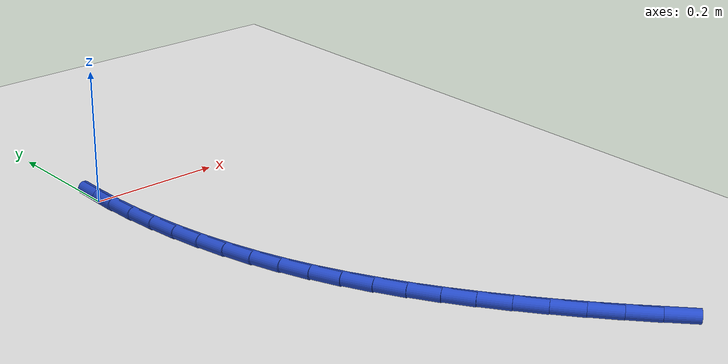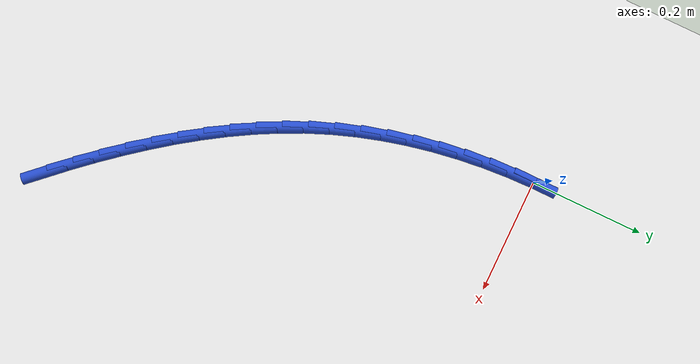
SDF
<sdf version="1.6">
 <world name="default">
  <model name="ground_plane">
   <static>1</static>
   <link name="link">
    <collision name="collision">
     <geometry><plane><normal>0 0 1</normal><size>100 100</size></plane></geometry>
     <surface><friction><ode><mu>100</mu><mu2>50</mu2></ode></friction></surface>
    </collision>
    <visual name="visual">
     <cast_shadows>0</cast_shadows>
     <geometry><plane><normal>0 0 1</normal><size>100 100</size></plane></geometry>
     <material>
      <script><uri>file://media/materials/scripts/gazebo.material</uri><name>Gazebo/WhiteGlow</name></script>
     </material>
    </visual>
   </link>
  </model>
  <model name="line">
   <link name="link_0">
    <pose>4.0766001685454967e-17 -5.551115123125783e-17 0.01 0 1.57 1.5599970781237409</pose>
    <collision name="collision">
     <geometry><cylinder><radius>0.01</radius><length>0.08</length></cylinder></geometry>
    </collision>
    <visual name="visual">
     <material>
      <script><name>Gazebo/Blue</name><uri>file://media/materials/scripts/gazebo.material</uri></script>
     </material>
     <geometry><cylinder><radius>0.01</radius><length>0.08</length></cylinder></geometry>
    </visual>
   </link>
   <link name="link_151">
    <pose>0.33772573807222744 -0.76064062080208 0.01 0 1.57 -0.8281751361616733</pose>
    <collision name="collision">
     <geometry><cylinder><radius>0.01</radius><length>0.08</length></cylinder></geometry>
    </collision>
    <visual name="visual">
     <material>
      <script><name>Gazebo/Blue</name><uri>file://media/materials/scripts/gazebo.material</uri></script>
     </material>
     <geometry><cylinder><radius>0.01</radius><length>0.08</length></cylinder></geometry>
    </visual>
   </link>
   <link name="link_152">
    <pose>0.30627559313724306 -0.7263777564111568 0.01 0 1.57 -0.8544680946568134</pose>
    <collision name="collision">
     <geometry><cylinder><radius>0.01</radius><length>0.08</length></cylinder></geometry>
    </collision>
    <visual name="visual">
     <material>
      <script><name>Gazebo/Blue</name><uri>file://media/materials/scripts/gazebo.material</uri></script>
     </material>
     <geometry><cylinder><radius>0.01</radius><length>0.08</length></cylinder></geometry>
    </visual>
   </link>
   <link name="link_153">
    <pose>0.27583845358301473 -0.6914163466865687 0.01 0 1.57 -0.879572883494342</pose>
    <collision name="collision">
     <geometry><cylinder><radius>0.01</radius><length>0.08</length></cylinder></geometry>
    </collision>
    <visual name="visual">
     <material>
      <script><name>Gazebo/Blue</name><uri>file://media/materials/scripts/gazebo.material</uri></script>
     </material>
     <geometry><cylinder><radius>0.01</radius><length>0.08</length></cylinder></geometry>
    </visual>
   </link>
   <link name="link_154">
    <pose>0.24648865440039927 -0.6559438109441835 0.01 0 1.57 -0.9057194336440809</pose>
    <collision name="collision">
     <geometry><cylinder><radius>0.01</radius><length>0.08</length></cylinder></geometry>
    </collision>
    <visual name="visual">
     <material>
      <script><name>Gazebo/Blue</name><uri>file://media/materials/scripts/gazebo.material</uri></script>
     </material>
     <geometry><cylinder><radius>0.01</radius><length>0.08</length></cylinder></geometry>
    </visual>
   </link>
   <link name="link_155">
    <pose>0.2183187937275196 -0.6200253307596406 0.01 0 1.57 -0.9350248473452728</pose>
    <collision name="collision">
     <geometry><cylinder><radius>0.01</radius><length>0.08</length></cylinder></geometry>
    </collision>
    <visual name="visual">
     <material>
      <script><name>Gazebo/Blue</name><uri>file://media/materials/scripts/gazebo.material</uri></script>
     </material>
     <geometry><cylinder><radius>0.01</radius><length>0.08</length></cylinder></geometry>
    </visual>
   </link>
   <link name="link_156">
    <pose>0.19143978431093248 -0.5836035055317471 0.01 0 1.57 -0.9676421496904232</pose>
    <collision name="collision">
     <geometry><cylinder><radius>0.01</radius><length>0.08</length></cylinder></geometry>
    </collision>
    <visual name="visual">
     <material>
      <script><name>Gazebo/Blue</name><uri>file://media/materials/scripts/gazebo.material</uri></script>
     </material>
     <geometry><cylinder><radius>0.01</radius><length>0.08</length></cylinder></geometry>
    </visual>
   </link>
   <link name="link_157">
    <pose>0.16596333922351006 -0.5466155779659205 0.01 0 1.57 -1.0036091126268816</pose>
    <collision name="collision">
     <geometry><cylinder><radius>0.01</radius><length>0.08</length></cylinder></geometry>
    </collision>
    <visual name="visual">
     <material>
      <script><name>Gazebo/Blue</name><uri>file://media/materials/scripts/gazebo.material</uri></script>
     </material>
     <geometry><cylinder><radius>0.01</radius><length>0.08</length></cylinder></geometry>
    </visual>
   </link>
   <link name="link_158">
    <pose>0.14200117153812408 -0.5089987907675771 0.01 0 1.57 -1.0429242994752204</pose>
    <collision name="collision">
     <geometry><cylinder><radius>0.01</radius><length>0.08</length></cylinder></geometry>
    </collision>
    <visual name="visual">
     <material>
      <script><name>Gazebo/Blue</name><uri>file://media/materials/scripts/gazebo.material</uri></script>
     </material>
     <geometry><cylinder><radius>0.01</radius><length>0.08</length></cylinder></geometry>
    </visual>
   </link>
   <link name="link_159">
    <pose>0.1196649943276476 -0.4706903866421355 0.01 0 1.57 -1.085534561452969</pose>
    <collision name="collision">
     <geometry><cylinder><radius>0.01</radius><length>0.08</length></cylinder></geometry>
    </collision>
    <visual name="visual">
     <material>
      <script><name>Gazebo/Blue</name><uri>file://media/materials/scripts/gazebo.material</uri></script>
     </material>
     <geometry><cylinder><radius>0.01</radius><length>0.08</length></cylinder></geometry>
    </visual>
   </link>
   <link name="link_160">
    <pose>0.09906652066495235 -0.43162760829501196 0.01 0 1.57 -1.1313224967273006</pose>
    <collision name="collision">
     <geometry><cylinder><radius>0.01</radius><length>0.08</length></cylinder></geometry>
    </collision>
    <visual name="visual">
     <material>
      <script><name>Gazebo/Blue</name><uri>file://media/materials/scripts/gazebo.material</uri></script>
     </material>
     <geometry><cylinder><radius>0.01</radius><length>0.08</length></cylinder></geometry>
    </visual>
   </link>
   <link name="link_161">
    <pose>0.08031746362291053 -0.3917476984316239 0.01 0 1.57 -1.1800842002863394</pose>
    <collision name="collision">
     <geometry><cylinder><radius>0.01</radius><length>0.08</length></cylinder></geometry>
    </collision>
    <visual name="visual">
     <material>
      <script><name>Gazebo/Blue</name><uri>file://media/materials/scripts/gazebo.material</uri></script>
     </material>
     <geometry><cylinder><radius>0.01</radius><length>0.08</length></cylinder></geometry>
    </visual>
   </link>
   <link name="link_162">
    <pose>0.06352917037066941 -0.3509882951108986 0.01 0 1.57 -1.2302323931913886</pose>
    <collision name="collision">
     <geometry><cylinder><radius>0.01</radius><length>0.08</length></cylinder></geometry>
    </collision>
    <visual name="visual">
     <material>
      <script><name>Gazebo/Blue</name><uri>file://media/materials/scripts/gazebo.material</uri></script>
     </material>
     <geometry><cylinder><radius>0.01</radius><length>0.08</length></cylinder></geometry>
    </visual>
   </link>
   <link name="link_163">
    <pose>0.04876847600094636 -0.30933513102559373 0.01 0 1.57 -1.279068574188553</pose>
    <collision name="collision">
     <geometry><cylinder><radius>0.01</radius><length>0.08</length></cylinder></geometry>
    </collision>
    <visual name="visual">
     <material>
      <script><name>Gazebo/Blue</name><uri>file://media/materials/scripts/gazebo.material</uri></script>
     </material>
     <geometry><cylinder><radius>0.01</radius><length>0.08</length></cylinder></geometry>
    </visual>
   </link>
   <link name="link_164">
    <pose>0.03601563837545496 -0.2668674842736105 0.01 0 1.57 -1.3263261645603197</pose>
    <collision name="collision">
     <geometry><cylinder><radius>0.01</radius><length>0.08</length></cylinder></geometry>
    </collision>
    <visual name="visual">
     <material>
      <script><name>Gazebo/Blue</name><uri>file://media/materials/scripts/gazebo.material</uri></script>
     </material>
     <geometry><cylinder><radius>0.01</radius><length>0.08</length></cylinder></geometry>
    </visual>
   </link>
   <link name="link_165">
    <pose>0.025240950275420525 -0.22367540007349337 0.01 0 1.57 -1.3720638912222125</pose>
    <collision name="collision">
     <geometry><cylinder><radius>0.01</radius><length>0.08</length></cylinder></geometry>
    </collision>
    <visual name="visual">
     <material>
      <script><name>Gazebo/Blue</name><uri>file://media/materials/scripts/gazebo.material</uri></script>
     </material>
     <geometry><cylinder><radius>0.01</radius><length>0.08</length></cylinder></geometry>
    </visual>
   </link>
   <link name="link_166">
    <pose>0.0164147044820687 -0.1798489236437883 0.01 0 1.57 -1.4163591093212053</pose>
    <collision name="collision">
     <geometry><cylinder><radius>0.01</radius><length>0.08</length></cylinder></geometry>
    </collision>
    <visual name="visual">
     <material>
      <script><name>Gazebo/Blue</name><uri>file://media/materials/scripts/gazebo.material</uri></script>
     </material>
     <geometry><cylinder><radius>0.01</radius><length>0.08</length></cylinder></geometry>
    </visual>
   </link>
   <link name="link_167">
    <pose>0.009507193776625102 -0.13547810020304077 0.01 0 1.57 -1.4593036919422255</pose>
    <collision name="collision">
     <geometry><cylinder><radius>0.01</radius><length>0.08</length></cylinder></geometry>
    </collision>
    <visual name="visual">
     <material>
      <script><name>Gazebo/Blue</name><uri>file://media/materials/scripts/gazebo.material</uri></script>
     </material>
     <geometry><cylinder><radius>0.01</radius><length>0.08</length></cylinder></geometry>
    </visual>
   </link>
   <link name="link_168">
    <pose>0.004488710940315298 -0.09065297496979584 0.01 0 1.57 -1.5010004923782783</pose>
    <collision name="collision">
     <geometry><cylinder><radius>0.01</radius><length>0.08</length></cylinder></geometry>
    </collision>
    <visual name="visual">
     <material>
      <script><name>Gazebo/Blue</name><uri>file://media/materials/scripts/gazebo.material</uri></script>
     </material>
     <geometry><cylinder><radius>0.01</radius><length>0.08</length></cylinder></geometry>
    </visual>
   </link>
   <link name="link_169">
    <pose>0.0013295487543651032 -0.0454635931626006 0.01 0 1.57 -1.5415604077966376</pose>
    <collision name="collision">
     <geometry><cylinder><radius>0.01</radius><length>0.08</length></cylinder></geometry>
    </collision>
    <visual name="visual">
     <material>
      <script><name>Gazebo/Blue</name><uri>file://media/materials/scripts/gazebo.material</uri></script>
     </material>
     <geometry><cylinder><radius>0.01</radius><length>0.08</length></cylinder></geometry>
    </visual>
   </link>
   <link name="link_170">
    <pose>4.2500725161431774e-17 -4.163336342344337e-17 0.01 0 1.57 1.560492626894038</pose>
    <collision name="collision">
     <geometry><cylinder><radius>0.01</radius><length>0.08</length></cylinder></geometry>
    </collision>
    <visual name="visual">
     <material>
      <script><name>Gazebo/Blue</name><uri>file://media/materials/scripts/gazebo.material</uri></script>
     </material>
     <geometry><cylinder><radius>0.01</radius><length>0.08</length></cylinder></geometry>
    </visual>
   </link>
  </model>
 </world>
</sdf>
